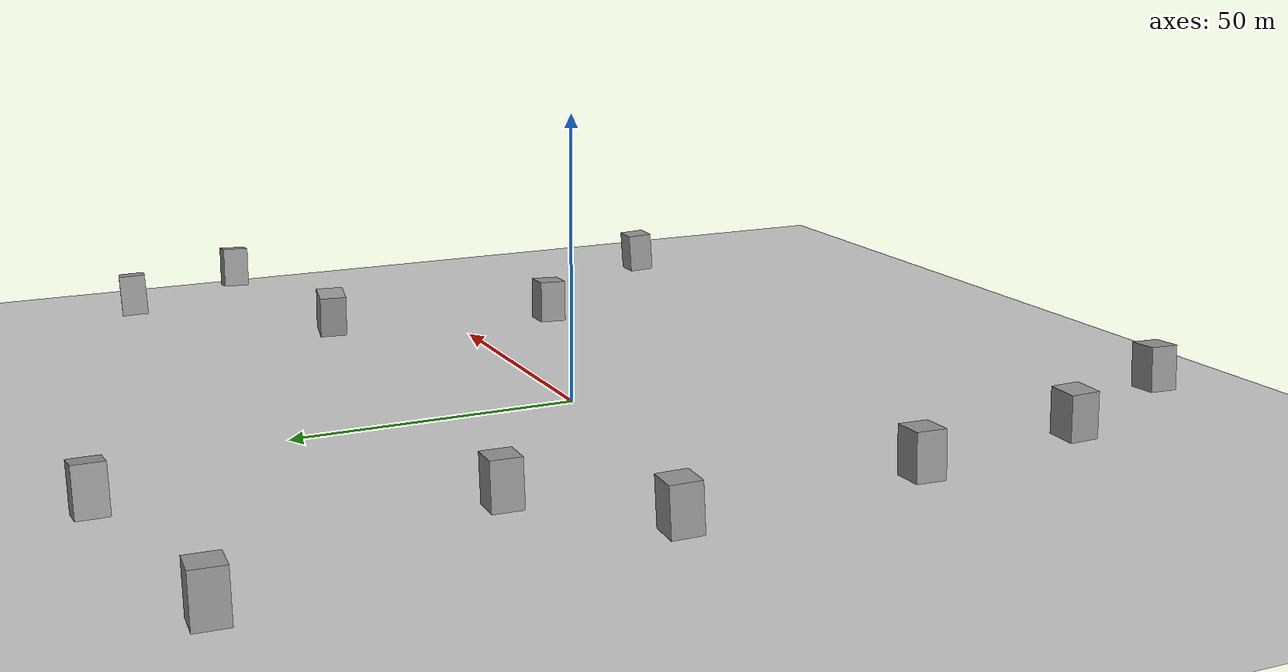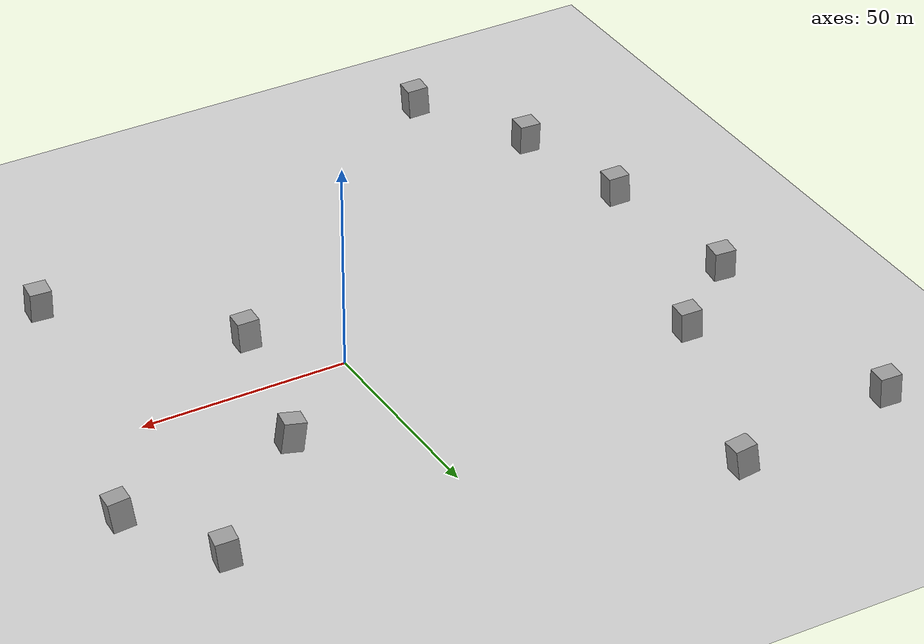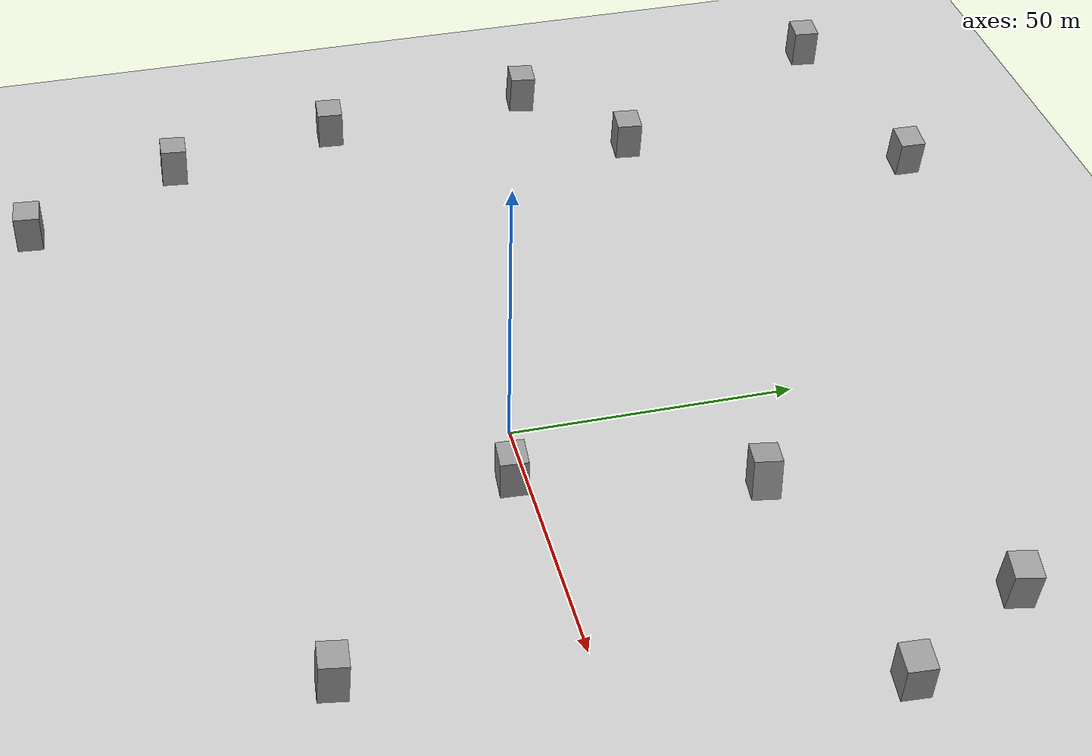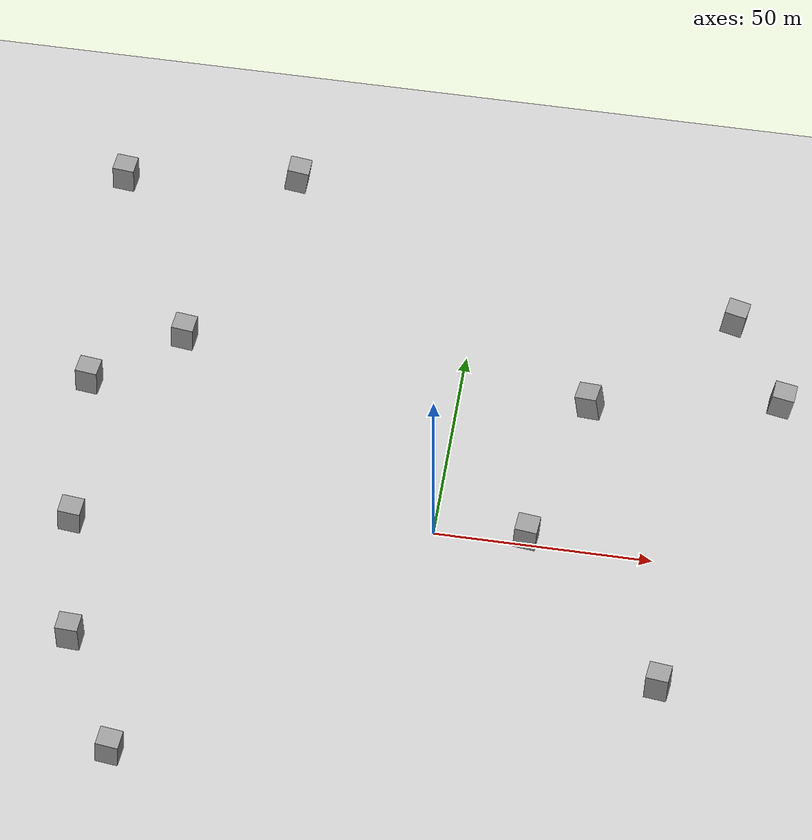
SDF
<sdf version="1.6">
 <world name="default">
  <light name="sun" type="directional">
   <pose>0 0 10 0 -0 0</pose>
   <diffuse>0.8 0.8 0.8 1</diffuse>
   <specular>0.2 0.2 0.2 1</specular>
   <attenuation>
    <range>1000</range>
    <constant>0.9</constant>
    <linear>0.01</linear>
    <quadratic>0.001</quadratic>
   </attenuation>
   <direction>-0.5 0.1 -0.9</direction>
  </light>
  <model name="ground_plane">
   <static>1</static>
   <link name="link">
    <collision name="collision">
     <geometry><plane><normal>0 0 1</normal><size>100 100</size></plane></geometry>
     <surface>
      <contact><collide_bitmask>65535</collide_bitmask></contact>
      <friction><ode><mu>100</mu><mu2>50</mu2></ode></friction>
     </surface>
    </collision>
    <visual name="visual">
     <cast_shadows>0</cast_shadows>
     <geometry><plane><normal>0 0 1</normal><size>100 100</size></plane></geometry>
     <material>
      <script><uri>file://media/materials/scripts/gazebo.material</uri><name>Gazebo/Grey</name></script>
     </material>
    </visual>
   </link>
  </model>
  <gravity>0 0 -9.8</gravity>
  <magnetic_field>6e-06 2.3e-05 -4.2e-05</magnetic_field>
  <atmosphere type="adiabatic"/>
  <physics name="default_physics" default="0" type="ode">
   <max_step_size>0.001</max_step_size>
   <real_time_factor>1</real_time_factor>
   <real_time_update_rate>1000</real_time_update_rate>
  </physics>
  <scene><ambient>0.4 0.4 0.4 1</ambient><background>0.7 0.7 0.7 1</background><shadows>1</shadows></scene>
  <audio><device>default</device></audio>
  <spherical_coordinates>
   <surface_model>EARTH_WGS84</surface_model>
   <latitude_deg>0</latitude_deg>
   <longitude_deg>0</longitude_deg>
   <elevation>0</elevation>
   <heading_deg>0</heading_deg>
  </spherical_coordinates>
  <model name="unit_box">
   <pose>-86.9656 82.3844 13.4623 1.55817 0.030758 -0.083015</pose>
   <link name="link">
    <inertial>
     <mass>1</mass>
     <inertia>
      <ixx>0.166667</ixx>
      <ixy>0</ixy>
      <ixz>0</ixz>
      <iyy>0.166667</iyy>
      <iyz>0</iyz>
      <izz>0.166667</izz>
     </inertia>
    </inertial>
    <collision name="collision"><geometry><box><size>5.09703 7.22832 4.59428</size></box></geometry></collision>
    <visual name="visual">
     <geometry><box><size>5.09703 7.22832 4.59428</size></box></geometry>
     <material>
      <script><name>Gazebo/Grey</name><uri>file://media/materials/scripts/gazebo.material</uri></script>
     </material>
    </visual>
   </link>
  </model>
  <model name="unit_box_clone">
   <pose>-64.5689 38.8094 12.4105 1.55482 0.048485 -0.086702</pose>
   <link name="link">
    <inertial>
     <mass>1</mass>
     <inertia>
      <ixx>0.166667</ixx>
      <ixy>0</ixy>
      <ixz>0</ixz>
      <iyy>0.166667</iyy>
      <iyz>0</iyz>
      <izz>0.166667</izz>
     </inertia>
    </inertial>
    <collision name="collision"><geometry><box><size>5.09704 7.22832 4.59428</size></box></geometry></collision>
    <visual name="visual">
     <geometry><box><size>5.09704 7.22832 4.59428</size></box></geometry>
     <material>
      <script><name>Gazebo/Grey</name><uri>file://media/materials/scripts/gazebo.material</uri></script>
     </material>
    </visual>
   </link>
  </model>
  <model name="unit_box_clone_0">
   <pose>61.1599 62.6658 12.1214 1.52684 0.119491 -0.156088</pose>
   <link name="link">
    <inertial>
     <mass>1</mass>
     <inertia>
      <ixx>0.166667</ixx>
      <ixy>0</ixy>
      <ixz>0</ixz>
      <iyy>0.166667</iyy>
      <iyz>0</iyz>
      <izz>0.166667</izz>
     </inertia>
    </inertial>
    <collision name="collision"><geometry><box><size>5.09704 7.22832 4.59428</size></box></geometry></collision>
    <visual name="visual">
     <geometry><box><size>5.09704 7.22832 4.59428</size></box></geometry>
     <material>
      <script><name>Gazebo/Grey</name><uri>file://media/materials/scripts/gazebo.material</uri></script>
     </material>
    </visual>
   </link>
  </model>
  <model name="unit_box_clone_1">
   <pose>-79.9322 -16.2113 13.1996 1.56714 0.050019 -0.07294</pose>
   <link name="link">
    <inertial>
     <mass>1</mass>
     <inertia>
      <ixx>0.166667</ixx>
      <ixy>0</ixy>
      <ixz>0</ixz>
      <iyy>0.166667</iyy>
      <iyz>0</iyz>
      <izz>0.166667</izz>
     </inertia>
    </inertial>
    <collision name="collision"><geometry><box><size>5.09704 7.22832 4.59428</size></box></geometry></collision>
    <visual name="visual">
     <geometry><box><size>5.09704 7.22832 4.59428</size></box></geometry>
     <material>
      <script><name>Gazebo/Grey</name><uri>file://media/materials/scripts/gazebo.material</uri></script>
     </material>
    </visual>
   </link>
  </model>
  <model name="unit_box_clone_2">
   <pose>-74.0408 -46.8825 13.0411 1.53384 -0.014403 -0.049691</pose>
   <link name="link">
    <inertial>
     <mass>1</mass>
     <inertia>
      <ixx>0.166667</ixx>
      <ixy>0</ixy>
      <ixz>0</ixz>
      <iyy>0.166667</iyy>
      <iyz>0</iyz>
      <izz>0.166667</izz>
     </inertia>
    </inertial>
    <collision name="collision"><geometry><box><size>5.09704 7.22832 4.59428</size></box></geometry></collision>
    <visual name="visual">
     <geometry><box><size>5.09704 7.22832 4.59428</size></box></geometry>
     <material>
      <script><name>Gazebo/Grey</name><uri>file://media/materials/scripts/gazebo.material</uri></script>
     </material>
    </visual>
   </link>
  </model>
  <model name="unit_box_clone_3">
   <pose>-59.5309 -74.6484 12.9691 1.57132 0.069208 -0.082844</pose>
   <link name="link">
    <inertial>
     <mass>1</mass>
     <inertia>
      <ixx>0.166667</ixx>
      <ixy>0</ixy>
      <ixz>0</ixz>
      <iyy>0.166667</iyy>
      <iyz>0</iyz>
      <izz>0.166667</izz>
     </inertia>
    </inertial>
    <collision name="collision"><geometry><box><size>5.09704 7.22832 4.59428</size></box></geometry></collision>
    <visual name="visual">
     <geometry><box><size>5.09704 7.22832 4.59428</size></box></geometry>
     <material>
      <script><name>Gazebo/Grey</name><uri>file://media/materials/scripts/gazebo.material</uri></script>
     </material>
    </visual>
   </link>
  </model>
  <model name="unit_box_clone_4">
   <pose>55.7896 -39.4467 12.1679 1.50594 0.018614 -0.101425</pose>
   <link name="link">
    <inertial>
     <mass>1</mass>
     <inertia>
      <ixx>0.166667</ixx>
      <ixy>0</ixy>
      <ixz>0</ixz>
      <iyy>0.166667</iyy>
      <iyz>0</iyz>
      <izz>0.166667</izz>
     </inertia>
    </inertial>
    <collision name="collision"><geometry><box><size>5.09704 7.22832 4.59428</size></box></geometry></collision>
    <visual name="visual">
     <geometry><box><size>5.09704 7.22832 4.59428</size></box></geometry>
     <material>
      <script><name>Gazebo/Grey</name><uri>file://media/materials/scripts/gazebo.material</uri></script>
     </material>
    </visual>
   </link>
  </model>
  <model name="unit_box_clone_5">
   <pose>30.9137 33.3777 12.4774 1.56368 -0.134728 -0.1519</pose>
   <link name="link">
    <inertial>
     <mass>1</mass>
     <inertia>
      <ixx>0.166667</ixx>
      <ixy>0</ixy>
      <ixz>0</ixz>
      <iyy>0.166667</iyy>
      <iyz>0</iyz>
      <izz>0.166667</izz>
     </inertia>
    </inertial>
    <collision name="collision"><geometry><box><size>5.09704 7.22832 4.59428</size></box></geometry></collision>
    <visual name="visual">
     <geometry><box><size>5.09704 7.22832 4.59428</size></box></geometry>
     <material>
      <script><name>Gazebo/Grey</name><uri>file://media/materials/scripts/gazebo.material</uri></script>
     </material>
    </visual>
   </link>
  </model>
  <model name="unit_box_clone_6">
   <pose>74.4522 40.4325 12.5603 1.59757 0.143765 -0.077804</pose>
   <link name="link">
    <inertial>
     <mass>1</mass>
     <inertia>
      <ixx>0.166667</ixx>
      <ixy>0</ixy>
      <ixz>0</ixz>
      <iyy>0.166667</iyy>
      <iyz>0</iyz>
      <izz>0.166667</izz>
     </inertia>
    </inertial>
    <collision name="collision"><geometry><box><size>5.09704 7.22832 4.59428</size></box></geometry></collision>
    <visual name="visual">
     <geometry><box><size>5.09704 7.22832 4.59428</size></box></geometry>
     <material>
      <script><name>Gazebo/Grey</name><uri>file://media/materials/scripts/gazebo.material</uri></script>
     </material>
    </visual>
   </link>
  </model>
  <model name="unit_box_clone_7">
   <pose>21.8321 -5.00024 12.8781 1.59156 0.056914 -0.07663</pose>
   <link name="link">
    <inertial>
     <mass>1</mass>
     <inertia>
      <ixx>0.166667</ixx>
      <ixy>0</ixy>
      <ixz>0</ixz>
      <iyy>0.166667</iyy>
      <iyz>0</iyz>
      <izz>0.166667</izz>
     </inertia>
    </inertial>
    <collision name="collision"><geometry><box><size>5.09704 7.22832 4.59428</size></box></geometry></collision>
    <visual name="visual">
     <geometry><box><size>5.09704 7.22832 4.59428</size></box></geometry>
     <material>
      <script><name>Gazebo/Grey</name><uri>file://media/materials/scripts/gazebo.material</uri></script>
     </material>
    </visual>
   </link>
  </model>
  <model name="unit_box_clone_8">
   <pose>-46.4202 88.4439 12.9999 1.56482 0.145459 -0.019454</pose>
   <link name="link">
    <inertial>
     <mass>1</mass>
     <inertia>
      <ixx>0.166667</ixx>
      <ixy>0</ixy>
      <ixz>0</ixz>
      <iyy>0.166667</iyy>
      <iyz>0</iyz>
      <izz>0.166667</izz>
     </inertia>
    </inertial>
    <collision name="collision"><geometry><box><size>5.09704 7.22832 4.59428</size></box></geometry></collision>
    <visual name="visual">
     <geometry><box><size>5.09704 7.22832 4.59428</size></box></geometry>
     <material>
      <script><name>Gazebo/Grey</name><uri>file://media/materials/scripts/gazebo.material</uri></script>
     </material>
    </visual>
   </link>
  </model>
  <model name="unit_box_clone_9">
   <pose>-83.7993 22.6395 13.0681 1.52341 0.020577 -0.101741</pose>
   <link name="link">
    <inertial>
     <mass>1</mass>
     <inertia>
      <ixx>0.166667</ixx>
      <ixy>0</ixy>
      <ixz>0</ixz>
      <iyy>0.166667</iyy>
      <iyz>0</iyz>
      <izz>0.166667</izz>
     </inertia>
    </inertial>
    <collision name="collision"><geometry><box><size>5.09704 7.22832 4.59428</size></box></geometry></collision>
    <visual name="visual">
     <geometry><box><size>5.09704 7.22832 4.59428</size></box></geometry>
     <material>
      <script><name>Gazebo/Grey</name><uri>file://media/materials/scripts/gazebo.material</uri></script>
     </material>
    </visual>
   </link>
  </model>
 </world>
</sdf>
